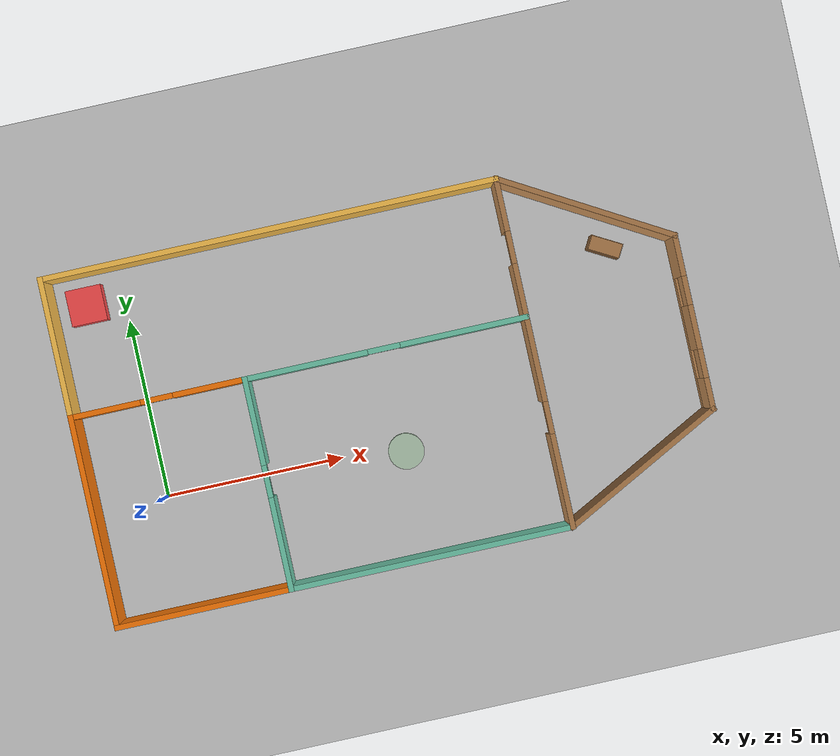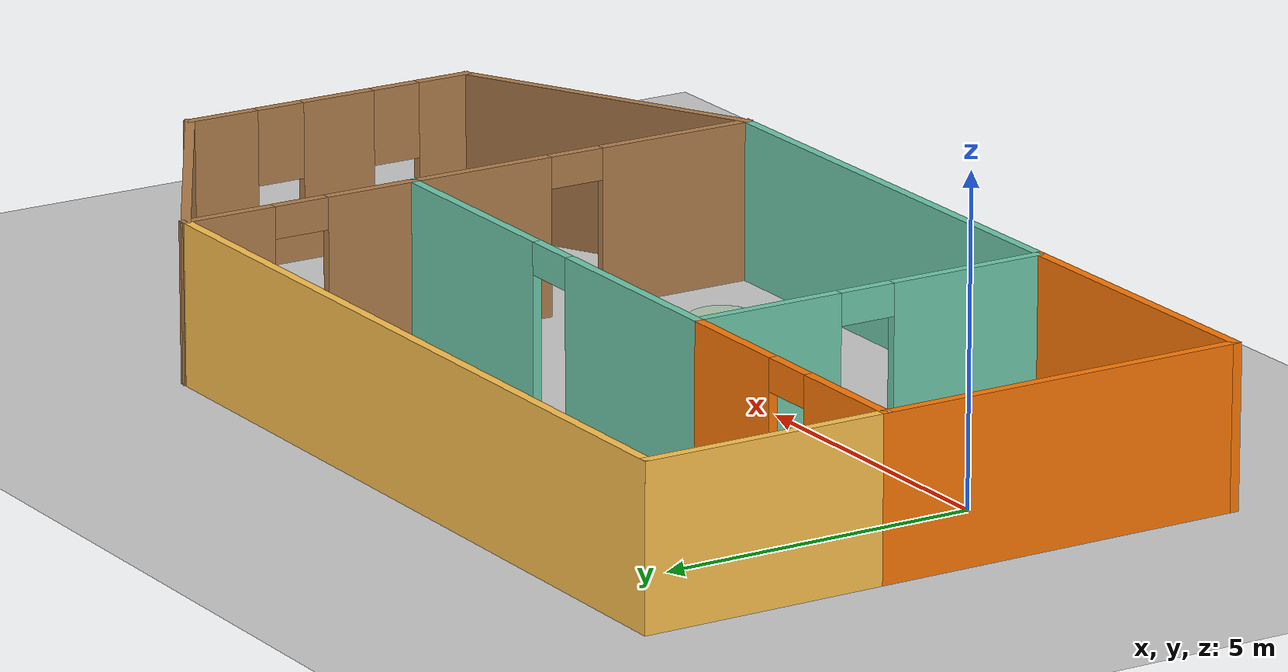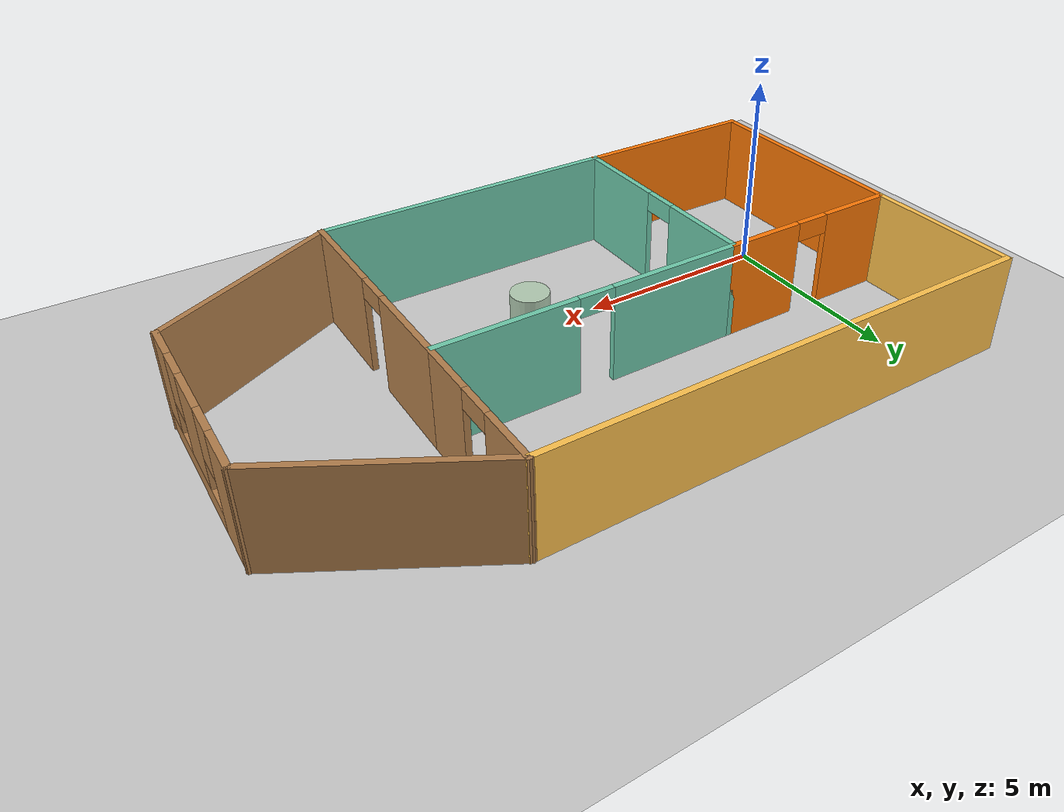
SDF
<sdf version="1.7">
 <world name="default">
  <light name="sun" type="directional">
   <pose>0 0 10 0 -0 0</pose>
   <diffuse>0.8 0.8 0.8 1</diffuse>
   <specular>0.2 0.2 0.2 1</specular>
   <attenuation>
    <range>1000</range>
    <constant>0.9</constant>
    <linear>0.01</linear>
    <quadratic>0.001</quadratic>
   </attenuation>
   <direction>-0.5 0.1 -0.9</direction>
   <spot><inner_angle>0</inner_angle><outer_angle>0</outer_angle><falloff>0</falloff></spot>
  </light>
  <model name="ground_plane">
   <static>1</static>
   <link name="link">
    <collision name="collision">
     <geometry><plane><normal>0 0 1</normal><size>100 100</size></plane></geometry>
     <surface>
      <contact><collide_bitmask>65535</collide_bitmask></contact>
      <friction><ode><mu>100</mu><mu2>50</mu2></ode></friction>
     </surface>
    </collision>
    <visual name="visual">
     <cast_shadows>0</cast_shadows>
     <geometry><plane><normal>0 0 1</normal><size>100 100</size></plane></geometry>
     <material>
      <script><uri>file://media/materials/scripts/gazebo.material</uri><name>Gazebo/Grey</name></script>
     </material>
    </visual>
   </link>
  </model>
  <gravity>0 0 -9.8</gravity>
  <magnetic_field>6e-06 2.3e-05 -4.2e-05</magnetic_field>
  <atmosphere type="adiabatic"/>
  <physics type="ode">
   <max_step_size>0.001</max_step_size>
   <real_time_factor>1</real_time_factor>
   <real_time_update_rate>1000</real_time_update_rate>
  </physics>
  <scene><ambient>0.4 0.4 0.4 1</ambient><background>0.7 0.7 0.7 1</background><shadows>1</shadows></scene>
  <spherical_coordinates>
   <surface_model>EARTH_WGS84</surface_model>
   <latitude_deg>0</latitude_deg>
   <longitude_deg>0</longitude_deg>
   <elevation>0</elevation>
   <heading_deg>0</heading_deg>
  </spherical_coordinates>
  <model name="simple_room">
   <pose>6.60067 1.70379 0 0 -0 0</pose>
   <link name="Wall_18">
    <pose>-3.72209 -1.92565 0 0 -0 1.5708</pose>
    <visual name="Wall_18_Visual_0">
     <pose>-1.68552 0 1.25 0 -0 0</pose>
     <geometry><box><size>2.62897 0.15 2.5</size></box></geometry>
     <material>
      <script><uri>file://media/materials/scripts/gazebo.material</uri><name>Gazebo/Grey</name></script>
      <ambient>0.435294 0.796078 0.67451 1</ambient>
     </material>
     <meta><layer>0</layer></meta>
    </visual>
    <collision name="Wall_18_Collision_0">
     <geometry><box><size>2.62897 0.15 2.5</size></box></geometry>
     <pose>-1.68552 0 1.25 0 -0 0</pose>
    </collision>
    <visual name="Wall_18_Visual_1">
     <pose>1.76449 0 1.25 0 -0 0</pose>
     <geometry><box><size>2.47103 0.15 2.5</size></box></geometry>
     <material>
      <script><uri>file://media/materials/scripts/gazebo.material</uri><name>Gazebo/Grey</name></script>
      <ambient>0.435294 0.796078 0.67451 1</ambient>
     </material>
     <meta><layer>0</layer></meta>
    </visual>
    <collision name="Wall_18_Collision_1">
     <geometry><box><size>2.47103 0.15 2.5</size></box></geometry>
     <pose>1.76449 0 1.25 0 -0 0</pose>
    </collision>
    <visual name="Wall_18_Visual_2">
     <pose>0.078971 0 2.25 0 -0 0</pose>
     <geometry><box><size>0.9 0.15 0.5</size></box></geometry>
     <material>
      <script><uri>file://media/materials/scripts/gazebo.material</uri><name>Gazebo/Grey</name></script>
      <ambient>0.435294 0.796078 0.67451 1</ambient>
     </material>
     <meta><layer>0</layer></meta>
    </visual>
    <collision name="Wall_18_Collision_2">
     <geometry><box><size>0.9 0.15 0.5</size></box></geometry>
     <pose>0.078971 0 2.25 0 -0 0</pose>
    </collision>
   </link>
   <link name="Wall_19">
    <pose>0.20291 0.999354 0 0 -0 0</pose>
    <visual name="Wall_19_Visual_0">
     <pose>-2.24923 0 1.25 0 -0 0</pose>
     <geometry><box><size>3.50155 0.15 2.5</size></box></geometry>
     <material>
      <script><uri>file://media/materials/scripts/gazebo.material</uri><name>Gazebo/Grey</name></script>
      <ambient>0.435294 0.796078 0.67451 1</ambient>
     </material>
     <meta><layer>0</layer></meta>
    </visual>
    <collision name="Wall_19_Collision_0">
     <geometry><box><size>3.50155 0.15 2.5</size></box></geometry>
     <pose>-2.24923 0 1.25 0 -0 0</pose>
    </collision>
    <visual name="Wall_19_Visual_1">
     <pose>2.20077 0 1.25 0 -0 0</pose>
     <geometry><box><size>3.59845 0.15 2.5</size></box></geometry>
     <material>
      <script><uri>file://media/materials/scripts/gazebo.material</uri><name>Gazebo/Grey</name></script>
      <ambient>0.435294 0.796078 0.67451 1</ambient>
     </material>
     <meta><layer>0</layer></meta>
    </visual>
    <collision name="Wall_19_Collision_1">
     <geometry><box><size>3.59845 0.15 2.5</size></box></geometry>
     <pose>2.20077 0 1.25 0 -0 0</pose>
    </collision>
    <visual name="Wall_19_Visual_2">
     <pose>-0.048453 0 2.25 0 -0 0</pose>
     <geometry><box><size>0.9 0.15 0.5</size></box></geometry>
     <material>
      <script><uri>file://media/materials/scripts/gazebo.material</uri><name>Gazebo/Grey</name></script>
      <ambient>0.435294 0.796078 0.67451 1</ambient>
     </material>
     <meta><layer>0</layer></meta>
    </visual>
    <collision name="Wall_19_Collision_2">
     <geometry><box><size>0.9 0.15 0.5</size></box></geometry>
     <pose>-0.048453 0 2.25 0 -0 0</pose>
    </collision>
   </link>
   <link name="Wall_20">
    <pose>4.12791 -1.92565 0 0 -0 -1.5708</pose>
    <visual name="Wall_20_Visual_0">
     <pose>-1.7846 0 1.25 0 -0 0</pose>
     <geometry><box><size>2.4308 0.15 2.5</size></box></geometry>
     <material>
      <script><uri>file://media/materials/scripts/gazebo.material</uri><name>Gazebo/Wood</name></script>
      <ambient>1 1 1 1</ambient>
     </material>
     <meta><layer>0</layer></meta>
    </visual>
    <collision name="Wall_20_Collision_0">
     <geometry><box><size>2.4308 0.15 2.5</size></box></geometry>
     <pose>-1.7846 0 1.25 0 -0 0</pose>
    </collision>
    <visual name="Wall_20_Visual_1">
     <pose>1.6654 0 1.25 0 -0 0</pose>
     <geometry><box><size>2.6692 0.15 2.5</size></box></geometry>
     <material>
      <script><uri>file://media/materials/scripts/gazebo.material</uri><name>Gazebo/Wood</name></script>
      <ambient>1 1 1 1</ambient>
     </material>
     <meta><layer>0</layer></meta>
    </visual>
    <collision name="Wall_20_Collision_1">
     <geometry><box><size>2.6692 0.15 2.5</size></box></geometry>
     <pose>1.6654 0 1.25 0 -0 0</pose>
    </collision>
    <visual name="Wall_20_Visual_2">
     <pose>-0.119198 0 2.25 0 -0 0</pose>
     <geometry><box><size>0.9 0.15 0.5</size></box></geometry>
     <material>
      <script><uri>file://media/materials/scripts/gazebo.material</uri><name>Gazebo/Wood</name></script>
      <ambient>1 1 1 1</ambient>
     </material>
     <meta><layer>0</layer></meta>
    </visual>
    <collision name="Wall_20_Collision_2">
     <geometry><box><size>0.9 0.15 0.5</size></box></geometry>
     <pose>-0.119198 0 2.25 0 -0 0</pose>
    </collision>
   </link>
   <link name="Wall_21">
    <collision name="Wall_21_Collision">
     <geometry><box><size>8 0.15 2.5</size></box></geometry>
     <pose>0 0 1.25 0 -0 0</pose>
    </collision>
    <visual name="Wall_21_Visual">
     <pose>0 0 1.25 0 -0 0</pose>
     <geometry><box><size>8 0.15 2.5</size></box></geometry>
     <material>
      <script><uri>file://media/materials/scripts/gazebo.material</uri><name>Gazebo/Grey</name></script>
      <ambient>0.435294 0.796078 0.67451 1</ambient>
     </material>
     <meta><layer>0</layer></meta>
    </visual>
    <pose>0.20291 -4.85065 0 0 -0 3.14159</pose>
   </link>
   <link name="Wall_22">
    <collision name="Wall_22_Collision">
     <geometry><box><size>5 0.15 2.5</size></box></geometry>
     <pose>0 0 1.25 0 -0 0</pose>
    </collision>
    <visual name="Wall_22_Visual">
     <pose>0 0 1.25 0 -0 0</pose>
     <geometry><box><size>5 0.15 2.5</size></box></geometry>
     <material>
      <script><uri>file://media/materials/scripts/gazebo.material</uri><name>Gazebo/Grey</name></script>
      <ambient>0.996078 0.47451 0.0196078 1</ambient>
     </material>
     <meta><layer>0</layer></meta>
    </visual>
    <pose>-6.14709 -4.85065 0 0 -0 3.14159</pose>
   </link>
   <link name="Wall_23">
    <collision name="Wall_23_Collision">
     <geometry><box><size>6 0.15 2.5</size></box></geometry>
     <pose>0 0 1.25 0 -0 0</pose>
    </collision>
    <visual name="Wall_23_Visual">
     <pose>0 0 1.25 0 -0 0</pose>
     <geometry><box><size>6 0.15 2.5</size></box></geometry>
     <material>
      <script><uri>file://media/materials/scripts/gazebo.material</uri><name>Gazebo/Grey</name></script>
      <ambient>0.996078 0.47451 0.0196078 1</ambient>
     </material>
     <meta><layer>0</layer></meta>
    </visual>
    <pose>-8.57209 -1.92565 0 0 -0 1.5708</pose>
   </link>
   <link name="Wall_24">
    <pose>-6.14709 0.999354 0 0 -0 0</pose>
    <visual name="Wall_24_Visual_0">
     <pose>-1.49211 0 1.25 0 -0 0</pose>
     <geometry><box><size>2.01577 0.15 2.5</size></box></geometry>
     <material>
      <script><uri>file://media/materials/scripts/gazebo.material</uri><name>Gazebo/Grey</name></script>
      <ambient>0.996078 0.47451 0.0196078 1</ambient>
     </material>
     <meta><layer>0</layer></meta>
    </visual>
    <collision name="Wall_24_Collision_0">
     <geometry><box><size>2.01577 0.15 2.5</size></box></geometry>
     <pose>-1.49211 0 1.25 0 -0 0</pose>
    </collision>
    <visual name="Wall_24_Visual_1">
     <pose>1.45789 0 1.25 0 -0 0</pose>
     <geometry><box><size>2.08423 0.15 2.5</size></box></geometry>
     <material>
      <script><uri>file://media/materials/scripts/gazebo.material</uri><name>Gazebo/Grey</name></script>
      <ambient>0.996078 0.47451 0.0196078 1</ambient>
     </material>
     <meta><layer>0</layer></meta>
    </visual>
    <collision name="Wall_24_Collision_1">
     <geometry><box><size>2.08423 0.15 2.5</size></box></geometry>
     <pose>1.45789 0 1.25 0 -0 0</pose>
    </collision>
    <visual name="Wall_24_Visual_2">
     <pose>-0.034228 0 2.25 0 -0 0</pose>
     <geometry><box><size>0.9 0.15 0.5</size></box></geometry>
     <material>
      <script><uri>file://media/materials/scripts/gazebo.material</uri><name>Gazebo/Grey</name></script>
      <ambient>0.996078 0.47451 0.0196078 1</ambient>
     </material>
     <meta><layer>0</layer></meta>
    </visual>
    <collision name="Wall_24_Collision_2">
     <geometry><box><size>0.9 0.15 0.5</size></box></geometry>
     <pose>-0.034228 0 2.25 0 -0 0</pose>
    </collision>
   </link>
   <link name="Wall_27">
    <collision name="Wall_27_Collision">
     <geometry><box><size>4 0.15 2.5</size></box></geometry>
     <pose>0 0 1.25 0 -0 0</pose>
    </collision>
    <visual name="Wall_27_Visual">
     <pose>0 0 1.25 0 -0 0</pose>
     <geometry><box><size>4 0.15 2.5</size></box></geometry>
     <material>
      <script><uri>file://media/materials/scripts/gazebo.material</uri><name>Gazebo/Grey</name></script>
      <ambient>1 0.764706 0.305882 1</ambient>
     </material>
     <meta><layer>0</layer></meta>
    </visual>
    <pose>-8.57209 2.92435 0 0 -0 1.5708</pose>
   </link>
   <link name="Wall_31">
    <pose>4.12791 2.92435 0 0 -0 1.5708</pose>
    <visual name="Wall_31_Visual_0">
     <pose>-1.217 0 1.25 0 -0 0</pose>
     <geometry><box><size>1.566 0.15 2.5</size></box></geometry>
     <material>
      <script><uri>file://media/materials/scripts/gazebo.material</uri><name>Gazebo/Wood</name></script>
      <ambient>1 1 1 1</ambient>
     </material>
     <meta><layer>0</layer></meta>
    </visual>
    <collision name="Wall_31_Collision_0">
     <geometry><box><size>1.566 0.15 2.5</size></box></geometry>
     <pose>-1.217 0 1.25 0 -0 0</pose>
    </collision>
    <visual name="Wall_31_Visual_1">
     <pose>1.233 0 1.25 0 -0 0</pose>
     <geometry><box><size>1.534 0.15 2.5</size></box></geometry>
     <material>
      <script><uri>file://media/materials/scripts/gazebo.material</uri><name>Gazebo/Wood</name></script>
      <ambient>1 1 1 1</ambient>
     </material>
     <meta><layer>0</layer></meta>
    </visual>
    <collision name="Wall_31_Collision_1">
     <geometry><box><size>1.534 0.15 2.5</size></box></geometry>
     <pose>1.233 0 1.25 0 -0 0</pose>
    </collision>
    <visual name="Wall_31_Visual_2">
     <pose>0.016001 0 2.25 0 -0 0</pose>
     <geometry><box><size>0.9 0.15 0.5</size></box></geometry>
     <material>
      <script><uri>file://media/materials/scripts/gazebo.material</uri><name>Gazebo/Wood</name></script>
      <ambient>1 1 1 1</ambient>
     </material>
     <meta><layer>0</layer></meta>
    </visual>
    <collision name="Wall_31_Collision_2">
     <geometry><box><size>0.9 0.15 0.5</size></box></geometry>
     <pose>0.016001 0 2.25 0 -0 0</pose>
    </collision>
   </link>
   <link name="Wall_32">
    <collision name="Wall_32_Collision">
     <geometry><box><size>12.85 0.15 2.5</size></box></geometry>
     <pose>0 0 1.25 0 -0 0</pose>
    </collision>
    <visual name="Wall_32_Visual">
     <pose>0 0 1.25 0 -0 0</pose>
     <geometry><box><size>12.85 0.15 2.5</size></box></geometry>
     <material>
      <script><uri>file://media/materials/scripts/gazebo.material</uri><name>Gazebo/Grey</name></script>
      <ambient>1 0.764706 0.305882 1</ambient>
     </material>
     <meta><layer>0</layer></meta>
    </visual>
    <pose>-2.22209 4.84936 0 0 -0 3.14159</pose>
   </link>
   <link name="Wall_34">
    <collision name="Wall_34_Collision">
     <geometry><box><size>5.25 0.15 2.5</size></box></geometry>
     <pose>0 0 1.25 0 -0 0</pose>
    </collision>
    <visual name="Wall_34_Visual">
     <pose>0 0 1.25 0 -0 0</pose>
     <geometry><box><size>5.25 0.15 2.5</size></box></geometry>
     <material>
      <script><uri>file://media/materials/scripts/gazebo.material</uri><name>Gazebo/Wood</name></script>
      <ambient>1 1 1 1</ambient>
     </material>
     <meta><layer>0</layer></meta>
    </visual>
    <pose>6.33627 3.57436 0 0 -0 -0.523599</pose>
   </link>
   <link name="Wall_35">
    <pose>8.54464 -0.125645 0 0 -0 -1.5708</pose>
    <visual name="Wall_35_Visual_0">
     <pose>-1.89303 0 1.25 0 -0 0</pose>
     <geometry><box><size>1.21394 0.15 2.5</size></box></geometry>
     <material>
      <script><uri>file://media/materials/scripts/gazebo.material</uri><name>Gazebo/Wood</name></script>
      <ambient>1 1 1 1</ambient>
     </material>
     <meta><layer>0</layer></meta>
    </visual>
    <collision name="Wall_35_Collision_0">
     <geometry><box><size>1.21394 0.15 2.5</size></box></geometry>
     <pose>-1.89303 0 1.25 0 -0 0</pose>
    </collision>
    <visual name="Wall_35_Visual_1">
     <pose>0.606971 0 0.25 0 -0 0</pose>
     <geometry><box><size>3.78606 0.15 0.5</size></box></geometry>
     <material>
      <script><uri>file://media/materials/scripts/gazebo.material</uri><name>Gazebo/Wood</name></script>
      <ambient>1 1 1 1</ambient>
     </material>
     <meta><layer>0</layer></meta>
    </visual>
    <collision name="Wall_35_Collision_1">
     <geometry><box><size>3.78606 0.15 0.5</size></box></geometry>
     <pose>0.606971 0 0.25 0 -0 0</pose>
    </collision>
    <visual name="Wall_35_Visual_2">
     <pose>0.131689 0 1.5 0 -0 0</pose>
     <geometry><box><size>1.23549 0.15 2</size></box></geometry>
     <material>
      <script><uri>file://media/materials/scripts/gazebo.material</uri><name>Gazebo/Wood</name></script>
      <ambient>1 1 1 1</ambient>
     </material>
     <meta><layer>0</layer></meta>
    </visual>
    <collision name="Wall_35_Collision_2">
     <geometry><box><size>1.23549 0.15 2</size></box></geometry>
     <pose>0.131689 0 1.5 0 -0 0</pose>
    </collision>
    <visual name="Wall_35_Visual_3">
     <pose>2.02472 0 1.5 0 -0 0</pose>
     <geometry><box><size>0.950565 0.15 2</size></box></geometry>
     <material>
      <script><uri>file://media/materials/scripts/gazebo.material</uri><name>Gazebo/Wood</name></script>
      <ambient>1 1 1 1</ambient>
     </material>
     <meta><layer>0</layer></meta>
    </visual>
    <collision name="Wall_35_Collision_3">
     <geometry><box><size>0.950565 0.15 2</size></box></geometry>
     <pose>2.02472 0 1.5 0 -0 0</pose>
    </collision>
    <visual name="Wall_35_Visual_4">
     <pose>-0.886058 0 1.9 0 -0 0</pose>
     <geometry><box><size>0.8 0.15 1.2</size></box></geometry>
     <material>
      <script><uri>file://media/materials/scripts/gazebo.material</uri><name>Gazebo/Wood</name></script>
      <ambient>1 1 1 1</ambient>
     </material>
     <meta><layer>0</layer></meta>
    </visual>
    <collision name="Wall_35_Collision_4">
     <geometry><box><size>0.8 0.15 1.2</size></box></geometry>
     <pose>-0.886058 0 1.9 0 -0 0</pose>
    </collision>
    <visual name="Wall_35_Visual_5">
     <pose>1.14943 0 1.9 0 -0 0</pose>
     <geometry><box><size>0.8 0.15 1.2</size></box></geometry>
     <material>
      <script><uri>file://media/materials/scripts/gazebo.material</uri><name>Gazebo/Wood</name></script>
      <ambient>1 1 1 1</ambient>
     </material>
     <meta><layer>0</layer></meta>
    </visual>
    <collision name="Wall_35_Collision_5">
     <geometry><box><size>0.8 0.15 1.2</size></box></geometry>
     <pose>1.14943 0 1.9 0 -0 0</pose>
    </collision>
   </link>
   <link name="Wall_36">
    <collision name="Wall_36_Collision">
     <geometry><box><size>5.12971 0.15 2.5</size></box></geometry>
     <pose>0 0 1.25 0 -0 0</pose>
    </collision>
    <visual name="Wall_36_Visual">
     <pose>0 0 1.25 0 -0 0</pose>
     <geometry><box><size>5.12971 0.15 2.5</size></box></geometry>
     <material>
      <script><uri>file://media/materials/scripts/gazebo.material</uri><name>Gazebo/Wood</name></script>
      <ambient>1 1 1 1</ambient>
     </material>
     <meta><layer>0</layer></meta>
    </visual>
    <pose>6.33627 -3.70065 0 0 -0 -2.66148</pose>
   </link>
   <static>1</static>
  </model>
  <model name="red_box">
   <link name="link">
    <inertial>
     <mass>1</mass>
     <inertia>
      <ixx>0.166667</ixx>
      <ixy>0</ixy>
      <ixz>0</ixz>
      <iyy>0.166667</iyy>
      <iyz>0</iyz>
      <izz>0.166667</izz>
     </inertia>
    </inertial>
    <visual name="visual">
     <geometry><box><size>1 1 1</size></box></geometry>
     <material>
      <script><name>Gazebo/Grey</name><uri>file://media/materials/scripts/gazebo.material</uri></script>
      <shader type="pixel"><normal_map>__default__</normal_map></shader>
      <ambient>1 0.3 0.3 1</ambient>
      <diffuse>0.7 0.7 0.7 1</diffuse>
      <specular>0.01 0.01 0.01 1</specular>
      <emissive>0 0 0 1</emissive>
     </material>
    </visual>
    <collision name="collision">
     <geometry><box><size>1 1 1</size></box></geometry>
     <surface>
      <friction>
       <ode><mu>1</mu><mu2>1</mu2><fdir1>0 0 0</fdir1><slip1>0</slip1><slip2>0</slip2></ode>
       <torsional>
        <coefficient>1</coefficient>
        <patch_radius>0</patch_radius>
        <surface_radius>0</surface_radius>
        <use_patch_radius>1</use_patch_radius>
        <ode><slip>0</slip></ode>
       </torsional>
      </friction>
      <bounce><restitution_coefficient>0</restitution_coefficient><threshold>1e+06</threshold></bounce>
      <contact>
       <collide_without_contact>0</collide_without_contact>
       <collide_without_contact_bitmask>1</collide_without_contact_bitmask>
       <collide_bitmask>1</collide_bitmask>
       <ode>
        <soft_cfm>0</soft_cfm>
        <soft_erp>0.2</soft_erp>
        <kp>1e+13</kp>
        <kd>1</kd>
        <max_vel>0.01</max_vel>
        <min_depth>0</min_depth>
       </ode>
       <bullet>
        <split_impulse>1</split_impulse>
        <split_impulse_penetration_threshold>-0.01</split_impulse_penetration_threshold>
        <soft_cfm>0</soft_cfm>
        <soft_erp>0.2</soft_erp>
        <kp>1e+13</kp>
        <kd>1</kd>
       </bullet>
      </contact>
     </surface>
    </collision>
   </link>
   <static>0</static>
   <pose>-1.02048 5.66158 0.5 0 -0 0</pose>
  </model>
  <model name="green_unit_cylinder">
   <link name="link">
    <inertial>
     <mass>1</mass>
     <inertia><ixx>0.145833</ixx><ixy>0</ixy><ixz>0</ixz><iyy>0.145833</iyy><iyz>0</iyz><izz>0.125</izz></inertia>
    </inertial>
    <visual name="visual">
     <geometry><cylinder><radius>0.5</radius><length>1</length></cylinder></geometry>
     <material>
      <script><name>Gazebo/Grey</name><uri>file://media/materials/scripts/gazebo.material</uri></script>
      <shader type="pixel"><normal_map>__default__</normal_map></shader>
      <ambient>0 1 0 0</ambient>
      <diffuse>0.7 0.8 0.7 1</diffuse>
      <specular>0.01 0.21 0.01 1</specular>
      <emissive>0 0 0 1</emissive>
     </material>
    </visual>
    <collision name="collision">
     <geometry><cylinder><radius>0.5</radius><length>1</length></cylinder></geometry>
     <surface>
      <friction>
       <ode><mu>1</mu><mu2>1</mu2><fdir1>0 0 0</fdir1><slip1>0</slip1><slip2>0</slip2></ode>
       <torsional>
        <coefficient>1</coefficient>
        <patch_radius>0</patch_radius>
        <surface_radius>0</surface_radius>
        <use_patch_radius>1</use_patch_radius>
        <ode><slip>0</slip></ode>
       </torsional>
      </friction>
      <bounce><restitution_coefficient>0</restitution_coefficient><threshold>1e+06</threshold></bounce>
      <contact>
       <collide_without_contact>0</collide_without_contact>
       <collide_without_contact_bitmask>1</collide_without_contact_bitmask>
       <collide_bitmask>1</collide_bitmask>
       <ode>
        <soft_cfm>0</soft_cfm>
        <soft_erp>0.2</soft_erp>
        <kp>1e+13</kp>
        <kd>1</kd>
        <max_vel>0.01</max_vel>
        <min_depth>0</min_depth>
       </ode>
       <bullet>
        <split_impulse>1</split_impulse>
        <split_impulse_penetration_threshold>-0.01</split_impulse_penetration_threshold>
        <soft_cfm>0</soft_cfm>
        <soft_erp>0.2</soft_erp>
        <kp>1e+13</kp>
        <kd>1</kd>
       </bullet>
      </contact>
     </surface>
    </collision>
   </link>
   <static>0</static>
   <pose>6.75133 -0.190207 0.5 0 -0 0</pose>
  </model>
  <model name="bookshelf">
   <static>1</static>
   <link name="link">
    <inertial><mass>1</mass></inertial>
    <collision name="back">
     <pose>0 0.005 0.6 0 -0 0</pose>
     <geometry><box><size>0.9 0.01 1.2</size></box></geometry>
    </collision>
    <visual name="visual1">
     <pose>0 0.005 0.6 0 -0 0</pose>
     <geometry><box><size>0.9 0.01 1.2</size></box></geometry>
     <material>
      <script><uri>file://media/materials/scripts/gazebo.material</uri><name>Gazebo/Wood</name></script>
     </material>
    </visual>
    <collision name="left_side">
     <pose>0.45 -0.195 0.6 0 -0 0</pose>
     <geometry><box><size>0.02 0.4 1.2</size></box></geometry>
    </collision>
    <visual name="visual2">
     <pose>0.45 -0.195 0.6 0 -0 0</pose>
     <geometry><box><size>0.02 0.4 1.2</size></box></geometry>
     <material>
      <script><uri>file://media/materials/scripts/gazebo.material</uri><name>Gazebo/Wood</name></script>
     </material>
    </visual>
    <collision name="right_side">
     <pose>-0.45 -0.195 0.6 0 -0 0</pose>
     <geometry><box><size>0.02 0.4 1.2</size></box></geometry>
    </collision>
    <visual name="visual3">
     <pose>-0.45 -0.195 0.6 0 -0 0</pose>
     <geometry><box><size>0.02 0.4 1.2</size></box></geometry>
     <material>
      <script><uri>file://media/materials/scripts/gazebo.material</uri><name>Gazebo/Wood</name></script>
     </material>
    </visual>
    <collision name="bottom">
     <pose>0 -0.195 0.03 0 -0 0</pose>
     <geometry><box><size>0.88 0.4 0.06</size></box></geometry>
    </collision>
    <visual name="visual4">
     <pose>0 -0.195 0.03 0 -0 0</pose>
     <geometry><box><size>0.88 0.4 0.06</size></box></geometry>
     <material>
      <script><uri>file://media/materials/scripts/gazebo.material</uri><name>Gazebo/Wood</name></script>
     </material>
    </visual>
    <collision name="top">
     <pose>0 -0.195 1.19 0 -0 0</pose>
     <geometry><box><size>0.88 0.4 0.02</size></box></geometry>
    </collision>
    <visual name="visual5">
     <pose>0 -0.195 1.19 0 -0 0</pose>
     <geometry><box><size>0.88 0.4 0.02</size></box></geometry>
     <material>
      <script><uri>file://media/materials/scripts/gazebo.material</uri><name>Gazebo/Wood</name></script>
     </material>
    </visual>
    <collision name="low_shelf">
     <pose>0 -0.195 0.43 0 -0 0</pose>
     <geometry><box><size>0.88 0.4 0.02</size></box></geometry>
    </collision>
    <visual name="visual6">
     <pose>0 -0.195 0.43 0 -0 0</pose>
     <geometry><box><size>0.88 0.4 0.02</size></box></geometry>
     <material>
      <script><uri>file://media/materials/scripts/gazebo.material</uri><name>Gazebo/Wood</name></script>
     </material>
    </visual>
    <collision name="high_shelf">
     <pose>0 -0.195 0.8 0 -0 0</pose>
     <geometry><box><size>0.88 0.4 0.02</size></box></geometry>
    </collision>
    <visual name="visual7">
     <pose>0 -0.195 0.8 0 -0 0</pose>
     <geometry><box><size>0.88 0.4 0.02</size></box></geometry>
     <material>
      <script><uri>file://media/materials/scripts/gazebo.material</uri><name>Gazebo/Wood</name></script>
     </material>
    </visual>
   </link>
   <pose>13.4254 4.31314 0 0 0 -0.507196</pose>
  </model>
 </world>
</sdf>
